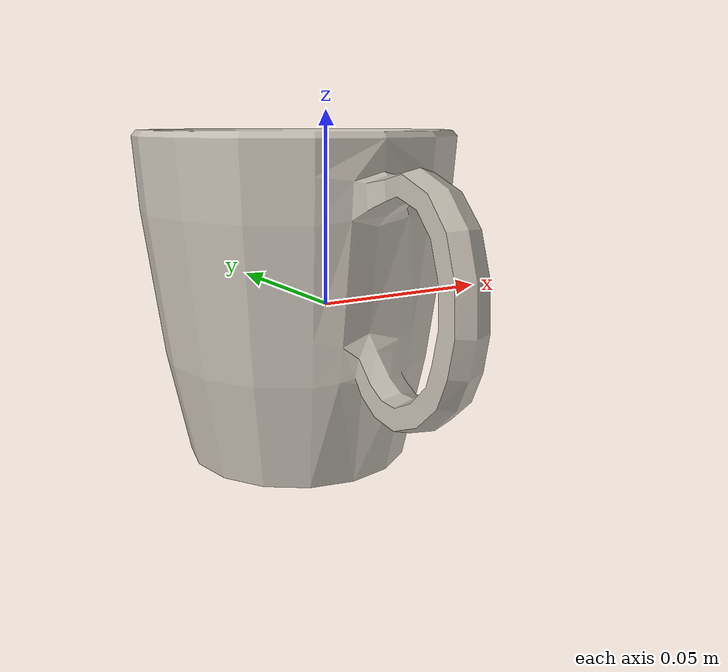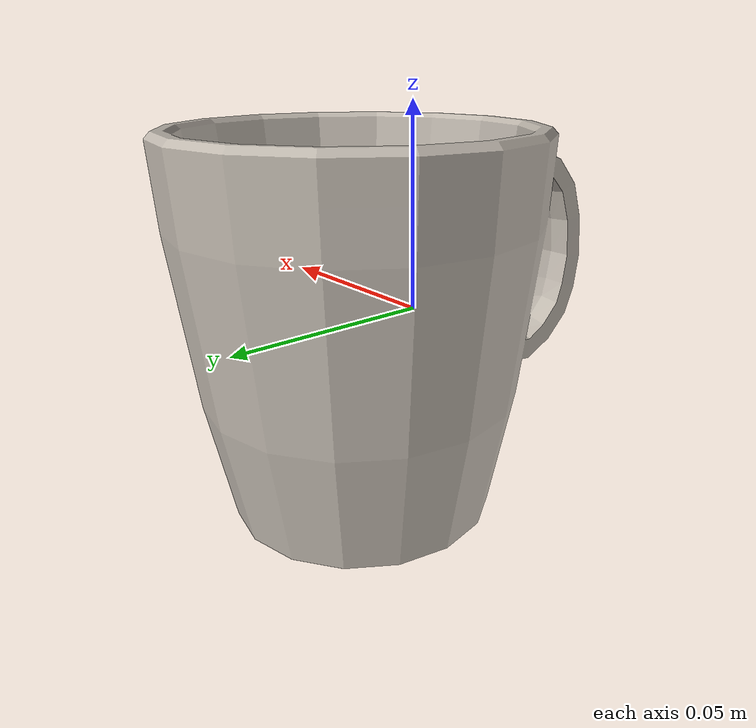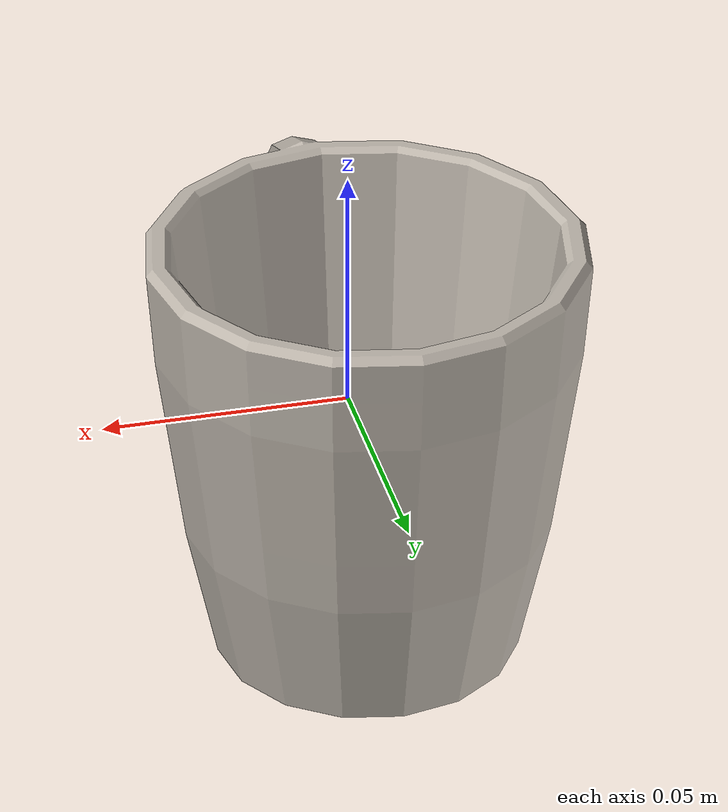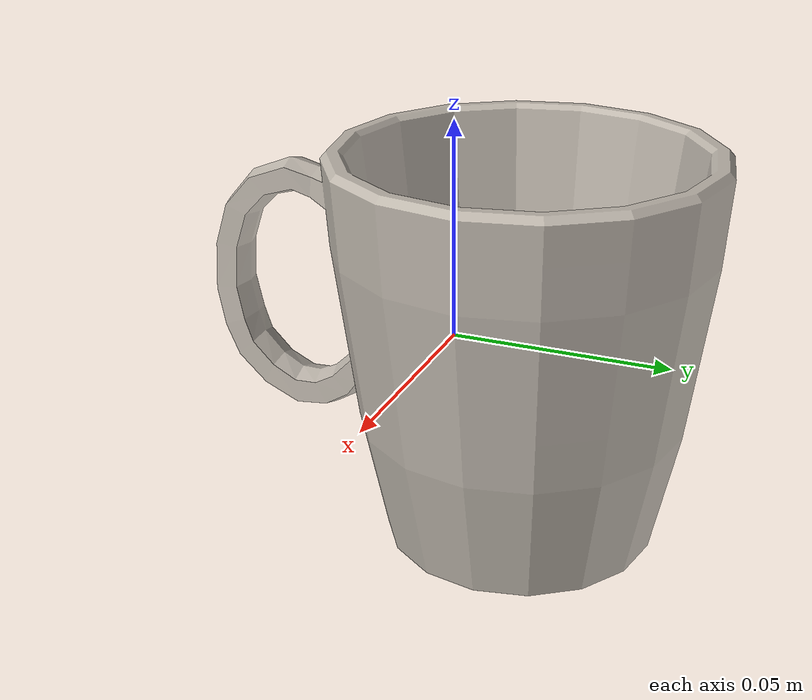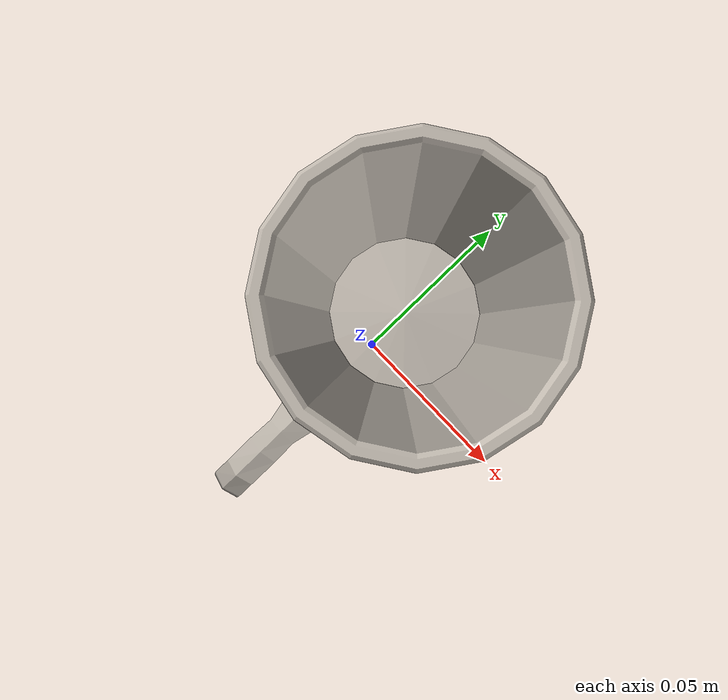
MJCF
<mujoco model="mug_45">
  <asset>
    <mesh file="visual/model_normalized_0.obj" name="model_normalized_0_vis" scale="0.12 0.12 0.12" refquat="-2.220446049250313e-16 0.0 0.0 1.0"/>
    <texture type="2d" name="image0" file="visual/image0.png"/>
    <material name="initialShadingGroup.015" texture="image0" specular="0.1" shininess="0.2" emission="0.15"/>
    <mesh file="collision/collision_mesh_collision_0.obj" name="mug_collision_mesh_0" scale="0.12 0.12 0.12" refquat="-2.220446049250313e-16 0.0 0.0 1.0"/>
    <mesh file="collision/collision_mesh_collision_1.obj" name="mug_collision_mesh_1" scale="0.12 0.12 0.12" refquat="-2.220446049250313e-16 0.0 0.0 1.0"/>
    <mesh file="collision/collision_mesh_collision_2.obj" name="mug_collision_mesh_2" scale="0.12 0.12 0.12" refquat="-2.220446049250313e-16 0.0 0.0 1.0"/>
    <mesh file="collision/collision_mesh_collision_3.obj" name="mug_collision_mesh_3" scale="0.12 0.12 0.12" refquat="-2.220446049250313e-16 0.0 0.0 1.0"/>
    <mesh file="collision/collision_mesh_collision_4.obj" name="mug_collision_mesh_4" scale="0.12 0.12 0.12" refquat="-2.220446049250313e-16 0.0 0.0 1.0"/>
    <mesh file="collision/collision_mesh_collision_5.obj" name="mug_collision_mesh_5" scale="0.12 0.12 0.12" refquat="-2.220446049250313e-16 0.0 0.0 1.0"/>
    <mesh file="collision/collision_mesh_collision_6.obj" name="mug_collision_mesh_6" scale="0.12 0.12 0.12" refquat="-2.220446049250313e-16 0.0 0.0 1.0"/>
    <mesh file="collision/collision_mesh_collision_7.obj" name="mug_collision_mesh_7" scale="0.12 0.12 0.12" refquat="-2.220446049250313e-16 0.0 0.0 1.0"/>
    <mesh file="collision/collision_mesh_collision_8.obj" name="mug_collision_mesh_8" scale="0.12 0.12 0.12" refquat="-2.220446049250313e-16 0.0 0.0 1.0"/>
    <mesh file="collision/collision_mesh_collision_9.obj" name="mug_collision_mesh_9" scale="0.12 0.12 0.12" refquat="-2.220446049250313e-16 0.0 0.0 1.0"/>
    <mesh file="collision/collision_mesh_collision_10.obj" name="mug_collision_mesh_10" scale="0.12 0.12 0.12" refquat="-2.220446049250313e-16 0.0 0.0 1.0"/>
    <mesh file="collision/collision_mesh_collision_11.obj" name="mug_collision_mesh_11" scale="0.12 0.12 0.12" refquat="-2.220446049250313e-16 0.0 0.0 1.0"/>
    <mesh file="collision/collision_mesh_collision_12.obj" name="mug_collision_mesh_12" scale="0.12 0.12 0.12" refquat="-2.220446049250313e-16 0.0 0.0 1.0"/>
    <mesh file="collision/collision_mesh_collision_13.obj" name="mug_collision_mesh_13" scale="0.12 0.12 0.12" refquat="-2.220446049250313e-16 0.0 0.0 1.0"/>
    <mesh file="collision/collision_mesh_collision_14.obj" name="mug_collision_mesh_14" scale="0.12 0.12 0.12" refquat="-2.220446049250313e-16 0.0 0.0 1.0"/>
    <mesh file="collision/collision_mesh_collision_15.obj" name="mug_collision_mesh_15" scale="0.12 0.12 0.12" refquat="-2.220446049250313e-16 0.0 0.0 1.0"/>
  </asset>
  <default>
    <default class="region">
      <geom group="1" conaffinity="0" contype="0" rgba="0 1 0 0" density="0"/>
    </default>
    <default class="collision">
      <geom group="3" rgba="0.5 0 0 0.5" density="0"/>
    </default>
  </default>
  <worldbody>
    <body>
      <body name="object">
        <geom density="0" friction="1.2 0.05 0.001" type="mesh" mesh="model_normalized_0_vis" conaffinity="0" contype="0" group="1" material="initialShadingGroup.015" mass="0.3"/>
        <geom class="region" name="reg_bbox" type="box" pos="1.0889998701901771e-06 0.0 3.5999999981051186e-09" size="0.043473007417613056 0.059999992847442625 0.0449400648" density="0"/>        <geom mesh="mug_collision_mesh_0" type="mesh" class="collision" density="0"/>
        <geom mesh="mug_collision_mesh_1" type="mesh" class="collision" density="0"/>
        <geom mesh="mug_collision_mesh_2" type="mesh" class="collision" density="0"/>
        <geom mesh="mug_collision_mesh_3" type="mesh" class="collision" density="0"/>
        <geom mesh="mug_collision_mesh_4" type="mesh" class="collision" density="0"/>
        <geom mesh="mug_collision_mesh_5" type="mesh" class="collision" density="0"/>
        <geom mesh="mug_collision_mesh_6" type="mesh" class="collision" density="0"/>
        <geom mesh="mug_collision_mesh_7" type="mesh" class="collision" density="0"/>
        <geom mesh="mug_collision_mesh_8" type="mesh" class="collision" density="0"/>
        <geom mesh="mug_collision_mesh_9" type="mesh" class="collision" density="0"/>
        <geom mesh="mug_collision_mesh_10" type="mesh" class="collision" density="0"/>
        <geom mesh="mug_collision_mesh_11" type="mesh" class="collision" density="0"/>
        <geom mesh="mug_collision_mesh_12" type="mesh" class="collision" density="0"/>
        <geom mesh="mug_collision_mesh_13" type="mesh" class="collision" density="0"/>
        <geom mesh="mug_collision_mesh_14" type="mesh" class="collision" density="0"/>
        <geom mesh="mug_collision_mesh_15" type="mesh" class="collision" density="0"/>
        <geom rgba="0 0 0 0" size="0.038 0.012" pos="0 0.018 0.022" type="cylinder" name="liquid" class="region" density="0"/>        <geom rgba="0 0 0 0 " size="0.027 0.042" pos="0 0.016 0.001" type="cylinder" name="reg_int" class="region" density="0"/>      </body>
    </body>
  </worldbody>
</mujoco>
